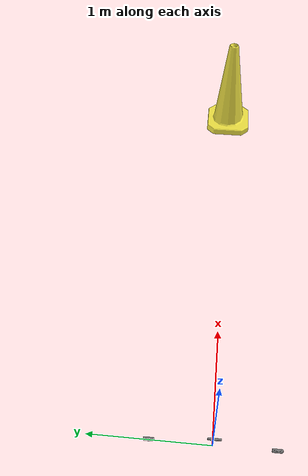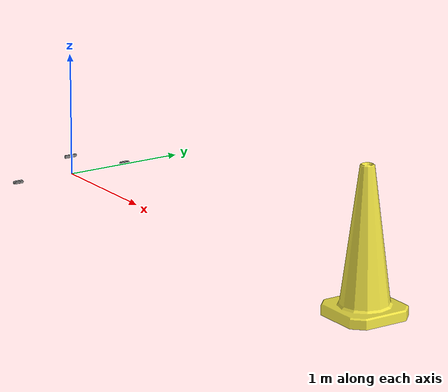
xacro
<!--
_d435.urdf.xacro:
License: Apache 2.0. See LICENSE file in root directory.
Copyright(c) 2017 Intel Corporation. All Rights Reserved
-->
<?xml version="1.0"?>

<robot name="realsense_cameras" xmlns:xacro="http://ros.org/wiki/xacro">
  <link name="base_link"/>

  <!-- d435  frame definition can be found at https://github.com/IntelRealSense/librealsense/blob/master/doc/d435i.md -->
  <xacro:include filename="$(find realsense_gazebo_description)/urdf/_d435.urdf.xacro"/>
  <xacro:sensor_d435  parent="base_link" name="D435_camera" topics_ns="D435_camera"
                      enable_pointCloud="false"
                      clip_distance="-1.0"
                      align_depth="false"
                      visualize="false"

                      depth_width="1280"
                      depth_height="720"
                      depth_fps="30"

                      infra_width="640"
                      infra_height="480"
                      infra_fps="30"

                      color_width="1920"
                      color_height="1080"
                      color_fps="30"
                      >
    <origin xyz="0.0 -0.5 0.0" rpy="0.0 0.0 0.0"/>
  </xacro:sensor_d435>

  <!-- d435i frame definition can be found at https://github.com/IntelRealSense/librealsense/blob/master/doc/d435i.md -->
  <!-- unite_imu_method can be "false", "copy" or "linear_interpolation" -->
  <xacro:include filename="$(find realsense_gazebo_description)/urdf/_d435i.urdf.xacro"/>
  <xacro:sensor_d435i parent="base_link" name="D435i_camera" topics_ns="D435i_camera"
                      enable_pointCloud="true"
                      clip_distance="-1.0"
                      align_depth="false"
                      visualize="false"

                      unite_imu_method="false"
                      accel_fps="250"
                      gyro_fps="400"

                      depth_width="1280"
                      depth_height="720"
                      depth_fps="30"

                      infra_width="640"
                      infra_height="480"
                      infra_fps="30"

                      color_width="1920"
                      color_height="1080"
                      color_fps="30"
                      >
    <origin xyz="0.0 0.5 0.0" rpy="0.0 0.0 0.0"/>
  </xacro:sensor_d435i>

  <!-- t265  frame definition can be found at https://github.com/IntelRealSense/librealsense/blob/master/doc/t265.md -->
  <!-- odom_xyz and odom_rpy paramenters are used as a base for odometry, they represent the trasformation from the robot
       base_link. unite_imu_method can be "false", "copy" or "linear_interpolation" -->
  <xacro:include filename="$(find realsense_gazebo_description)/urdf/_t265.urdf.xacro"/>
  <xacro:sensor_t265  parent="base_link" name="T265_camera" topics_ns="T265_camera"
                      odom_xyz="0.0 0.0 0.25"
                      odom_rpy="0.0 0.0 0.0"
                      odom_fps="262"

                      fisheye_width="848"
                      fisheye_height="800"
                      fisheye_fps="30"

                      unite_imu_method="false"
                      accel_fps="62.5"
                      gyro_fps="200"
                      >
    <origin xyz="0.0 0.0 0.15" rpy="0.0 0.0 0.0"/>
  </xacro:sensor_t265>

  <!-- add a cone, just to have something to see -->
  <joint name="cone_joint" type="fixed">
          <parent link="base_link"/>
          <child link="cone_link"/>
          <origin xyz="4 0 0" rpy="0 0 0"/>
  </joint>
  <link name='cone_link'>
    <visual>
      <geometry>
        <mesh filename="model://construction_cone/meshes/construction_cone.dae" scale="10 10 10"/>
      </geometry>
    </visual>
  </link>

</robot>

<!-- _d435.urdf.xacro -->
<robot name="sensor_d435" xmlns:xacro="http://ros.org/wiki/xacro">
  <!--File includes-->
  <xacro:include filename="$(find realsense_gazebo_description)/urdf/_d435.gazebo.xacro"/>

  <xacro:macro name="sensor_d435" params="parent
                                          name:=camera
                                          topics_ns:=camera
                                          align_depth:=false
                                          enable_pointCloud:=false

                                          clip_distance:=-1.0
                                          depth_width:=1280
                                          depth_height:=720
                                          depth_fps:=30

                                          infra_width:=640
                                          infra_height:=480
                                          infra_fps:=30

                                          color_width:=1920
                                          color_height:=1080
                                          color_fps:=30

                                          visualize:=false
                                          *origin">
    <xacro:property name="M_PI" value="3.1415926535897931"/>

    <!-- The following values are approximate, and the camera node
     publishing TF values with actual calibrated camera extrinsic values -->
    <xacro:property name="d435_cam_depth_to_left_ir_offset" value="0.0"/>
    <xacro:property name="d435_cam_depth_to_right_ir_offset" value="-0.050"/>
    <xacro:property name="d435_cam_depth_to_color_offset" value="0.015"/>

    <!-- The following values model the aluminum peripherial case for the
  	D435 camera, with the camera joint represented by the actual
  	peripherial camera tripod mount -->
    <xacro:property name="d435_cam_width" value="0.090"/>
    <xacro:property name="d435_cam_height" value="0.025"/>
    <xacro:property name="d435_cam_depth" value="0.02505"/>
    <xacro:property name="d435_cam_mount_from_center_offset" value="0.0149"/>

    <!-- The following offset is relative the the physical D435 camera peripherial
  	camera tripod mount -->
    <xacro:property name="d435_cam_depth_px" value="${d435_cam_mount_from_center_offset}"/>
    <xacro:property name="d435_cam_depth_py" value="0.0175"/>
    <xacro:property name="d435_cam_depth_pz" value="${d435_cam_height/2}"/>

    <material name="${name}_aluminum">
	  <color rgba="0.5 0.5 0.5 1"/>
    </material>

    <!-- camera body, with origin at bottom screw mount -->
    <joint name="${name}_joint" type="fixed">
      <xacro:insert_block name="origin"/>
      <parent link="${parent}"/>
      <child link="${name}_bottom_screw_frame"/>
    </joint>
    <link name="${name}_bottom_screw_frame"/>

    <joint name="${name}_link_joint" type="fixed">
      <origin xyz="0 ${d435_cam_depth_py} ${d435_cam_depth_pz}" rpy="0 0 0"/>
      <parent link="${name}_bottom_screw_frame"/>
      <child link="${name}_link"/>
    </joint>

    <link name="${name}_link">
      <visual>
      <origin xyz="${d435_cam_mount_from_center_offset} ${-d435_cam_depth_py} 0" rpy="${M_PI/2} 0 ${M_PI/2}"/>
        <geometry>
          <mesh filename="package://realsense2_description/meshes/d435.dae"/>
        </geometry>
        <material name="${name}_aluminum"/>
      </visual>
      <collision>
        <origin xyz="0 ${-d435_cam_depth_py} 0" rpy="0 0 0"/>
        <geometry>
        <box size="${d435_cam_depth} ${d435_cam_width} ${d435_cam_height}"/>
        </geometry>
      </collision>
      <inertial>
        <!-- The following are not reliable values, and should not be used for modeling -->
        <mass value="0.564"/>
        <origin xyz="0 0 0"/>
        <inertia ixx="0.003881243" ixy="0.0" ixz="0.0" iyy="0.000498940" iyz="0.0" izz="0.003879257"/>
      </inertial>
    </link>

    <!-- camera depth joints and links -->
    <joint name="${name}_depth_joint" type="fixed">
      <origin xyz="0 0 0" rpy="0 0 0"/>
      <parent link="${name}_link"/>
      <child link="${name}_depth_frame"/>
    </joint>
    <link name="${name}_depth_frame"/>

    <joint name="${name}_depth_optical_joint" type="fixed">
      <origin xyz="0 0 0" rpy="${-M_PI/2} 0 ${-M_PI/2}"/>
      <parent link="${name}_depth_frame"/>
      <child link="${name}_depth_optical_frame"/>
    </joint>
    <link name="${name}_depth_optical_frame"/>

    <!-- camera left IR joints and links -->
    <joint name="${name}_left_ir_joint" type="fixed">
      <origin xyz="0 ${d435_cam_depth_to_left_ir_offset} 0" rpy="0 0 0"/>
      <parent link="${name}_depth_frame"/>
      <child link="${name}_left_ir_frame"/>
    </joint>
    <link name="${name}_left_ir_frame"/>

    <joint name="${name}_left_ir_optical_joint" type="fixed">
      <origin xyz="0 0 0" rpy="${-M_PI/2} 0 ${-M_PI/2}"/>
      <parent link="${name}_left_ir_frame"/>
      <child link="${name}_left_ir_optical_frame"/>
    </joint>
    <link name="${name}_left_ir_optical_frame"/>

    <!-- camera right IR joints and links -->
    <joint name="${name}_right_ir_joint" type="fixed">
      <origin xyz="0 ${d435_cam_depth_to_right_ir_offset} 0" rpy="0 0 0"/>
      <parent link="${name}_depth_frame"/>
      <child link="${name}_right_ir_frame"/>
    </joint>
    <link name="${name}_right_ir_frame"/>

    <joint name="${name}_right_ir_optical_joint" type="fixed">
      <origin xyz="0 0 0" rpy="${-M_PI/2} 0 ${-M_PI/2}"/>
      <parent link="${name}_right_ir_frame"/>
      <child link="${name}_right_ir_optical_frame"/>
    </joint>
    <link name="${name}_right_ir_optical_frame"/>

    <!-- camera color joints and links -->
    <joint name="${name}_color_joint" type="fixed">
      <origin xyz="0 ${d435_cam_depth_to_color_offset} 0" rpy="0 0 0"/>
      <parent link="${name}_depth_frame"/>
      <child link="${name}_color_frame"/>
    </joint>
    <link name="${name}_color_frame"/>

    <joint name="${name}_color_optical_joint" type="fixed">
      <origin xyz="0 0 0" rpy="${-M_PI/2} 0 ${-M_PI/2}"/>
      <parent link="${name}_color_frame"/>
      <child link="${name}_color_optical_frame"/>
    </joint>
    <link name="${name}_color_optical_frame"/>

    <!-- Realsense Gazebo Plugin -->
    <xacro:gazebo_d435  camera_name="${name}"
                        topics_ns="${topics_ns}"
                        reference_link="${name}_link"

                        depth_optical_frame="${name}_depth_optical_frame"
                        depth_width="${depth_width}"
                        depth_height="${depth_height}"
                        depth_fps="${depth_fps}"

                        color_optical_frame="${name}_color_optical_frame"
                        color_width="${color_width}"
                        color_height="${color_height}"
                        color_fps="${color_fps}"

                        infrared1_optical_frame="${name}_left_ir_optical_frame"
                        infrared2_optical_frame="${name}_right_ir_optical_frame"
                        infra_width="${infra_width}"
                        infra_height="${infra_height}"
                        infra_fps="${infra_fps}"

                        enable_pointCloud="${enable_pointCloud}"
                        clip_distance="${clip_distance}"
                        align_depth="${align_depth}"
                        visualize="${visualize}"
    />

  </xacro:macro>
</robot>

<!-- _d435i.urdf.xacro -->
<robot name="sensor_d435i" xmlns:xacro="http://ros.org/wiki/xacro">
  <!--File includes-->
  <xacro:include filename="$(find realsense_gazebo_description)/urdf/_d435i.gazebo.xacro"/>

  <xacro:macro name="sensor_d435i" params="parent
                                          name:=camera
                                          topics_ns:=camera
                                          visualize:=false
                                          align_depth:=false
                                          enable_pointCloud:=false

                                          unite_imu_method:=false
                                          accel_fps:=250
                                          gyro_fps:=400

                                          clip_distance:=-1.0
                                          depth_width:=1280
                                          depth_height:=720
                                          depth_fps:=30

                                          infra_width:=640
                                          infra_height:=480
                                          infra_fps:=30

                                          color_width:=1920
                                          color_height:=1080
                                          color_fps:=30

                                          *origin">
    <xacro:property name="M_PI" value="3.1415926535897931"/>

    <!-- The following values are approximate, and the camera node
     publishing TF values with actual calibrated camera extrinsic values -->
    <xacro:property name="d435i_cam_depth_to_left_ir_offset" value="0.0"/>
    <xacro:property name="d435i_cam_depth_to_right_ir_offset" value="-0.050"/>
    <xacro:property name="d435i_cam_depth_to_color_offset" value="0.015"/>

    <!-- The following values model the aluminum peripherial case for the
  	D435 camera, with the camera joint represented by the actual
  	peripherial camera tripod mount -->
    <xacro:property name="d435i_cam_width" value="0.090"/>
    <xacro:property name="d435i_cam_height" value="0.025"/>
    <xacro:property name="d435i_cam_depth" value="0.02505"/>
    <xacro:property name="d435i_cam_mount_from_center_offset" value="0.0149"/>

    <!-- The following offset is relative the the physical D435 camera peripherial
  	camera tripod mount -->
    <xacro:property name="d435i_cam_depth_px" value="${d435i_cam_mount_from_center_offset}"/>
    <xacro:property name="d435i_cam_depth_py" value="0.0175"/>
    <xacro:property name="d435i_cam_depth_pz" value="${d435i_cam_height/2}"/>

    <material name="${name}_aluminum">
	  <color rgba="0.5 0.5 0.5 1"/>
    </material>

    <!-- camera body, with origin at bottom screw mount -->
    <joint name="${name}_joint" type="fixed">
      <xacro:insert_block name="origin"/>
      <parent link="${parent}"/>
      <child link="${name}_bottom_screw_frame"/>
    </joint>
    <link name="${name}_bottom_screw_frame"/>

    <joint name="${name}_link_joint" type="fixed">
      <origin xyz="0 ${d435i_cam_depth_py} ${d435i_cam_depth_pz}" rpy="0 0 0"/>
      <parent link="${name}_bottom_screw_frame"/>
      <child link="${name}_link"/>
    </joint>

    <link name="${name}_link">
      <visual>
      <origin xyz="${d435i_cam_mount_from_center_offset} ${-d435i_cam_depth_py} 0" rpy="${M_PI/2} 0 ${M_PI/2}"/>
        <geometry>
          <mesh filename="package://realsense2_description/meshes/d435.dae"/>
        </geometry>
        <material name="${name}_aluminum"/>
      </visual>
      <collision>
        <origin xyz="0 ${-d435i_cam_depth_py} 0" rpy="0 0 0"/>
        <geometry>
        <box size="${d435i_cam_depth} ${d435i_cam_width} ${d435i_cam_height}"/>
        </geometry>
      </collision>
      <inertial>
        <!-- The following are not reliable values, and should not be used for modeling -->
        <mass value="0.564"/>
        <origin xyz="0 0 0"/>
        <inertia ixx="0.003881243" ixy="0.0" ixz="0.0" iyy="0.000498940" iyz="0.0" izz="0.003879257"/>
      </inertial>
    </link>

    <!-- camera depth joints and links -->
    <joint name="${name}_depth_joint" type="fixed">
      <origin xyz="0 0 0" rpy="0 0 0"/>
      <parent link="${name}_link"/>
      <child link="${name}_depth_frame"/>
    </joint>
    <link name="${name}_depth_frame"/>

    <joint name="${name}_depth_optical_joint" type="fixed">
      <origin xyz="0 0 0" rpy="${-M_PI/2} 0 ${-M_PI/2}"/>
      <parent link="${name}_depth_frame"/>
      <child link="${name}_depth_optical_frame"/>
    </joint>
    <link name="${name}_depth_optical_frame"/>

    <!-- camera left IR joints and links -->
    <joint name="${name}_left_ir_joint" type="fixed">
      <origin xyz="0 ${d435i_cam_depth_to_left_ir_offset} 0" rpy="0 0 0"/>
      <parent link="${name}_depth_frame"/>
      <child link="${name}_left_ir_frame"/>
    </joint>
    <link name="${name}_left_ir_frame"/>

    <joint name="${name}_left_ir_optical_joint" type="fixed">
      <origin xyz="0 0 0" rpy="${-M_PI/2} 0 ${-M_PI/2}"/>
      <parent link="${name}_left_ir_frame"/>
      <child link="${name}_left_ir_optical_frame"/>
    </joint>
    <link name="${name}_left_ir_optical_frame"/>

    <!-- camera right IR joints and links -->
    <joint name="${name}_right_ir_joint" type="fixed">
      <origin xyz="0 ${d435i_cam_depth_to_right_ir_offset} 0" rpy="0 0 0"/>
      <parent link="${name}_depth_frame"/>
      <child link="${name}_right_ir_frame"/>
    </joint>
    <link name="${name}_right_ir_frame"/>

    <joint name="${name}_right_ir_optical_joint" type="fixed">
      <origin xyz="0 0 0" rpy="${-M_PI/2} 0 ${-M_PI/2}"/>
      <parent link="${name}_right_ir_frame"/>
      <child link="${name}_right_ir_optical_frame"/>
    </joint>
    <link name="${name}_right_ir_optical_frame"/>

    <!-- camera color joints and links -->
    <joint name="${name}_color_joint" type="fixed">
      <origin xyz="0 ${d435i_cam_depth_to_color_offset} 0" rpy="0 0 0"/>
      <parent link="${name}_depth_frame"/>
      <child link="${name}_color_frame"/>
    </joint>
    <link name="${name}_color_frame"/>

    <joint name="${name}_color_optical_joint" type="fixed">
      <origin xyz="0 0 0" rpy="${-M_PI/2} 0 ${-M_PI/2}"/>
      <parent link="${name}_color_frame"/>
      <child link="${name}_color_optical_frame"/>
    </joint>
    <link name="${name}_color_optical_frame"/>

    <!-- camera accel joints and links -->
    <joint name="${name}_accel_joint" type="fixed">
      <origin xyz="-0.00174 0.00552 0.0176" rpy="0 0 0"/>
      <parent link="${name}_link"/>
      <child link="${name}_accel_frame"/>
    </joint>
    <link name="${name}_accel_frame"/>

    <joint name="${name}_accel_optical_joint" type="fixed">
      <origin xyz="0 0 0" rpy="${-M_PI/2} 0 ${-M_PI/2}"/>
      <parent link="${name}_accel_frame"/>
      <child link="${name}_accel_optical_frame"/>
    </joint>
    <link name="${name}_accel_optical_frame"/>

    <!-- camera gyro joints and links -->
    <joint name="${name}_gyro_joint" type="fixed">
      <origin xyz="-0.00174 0.00552 0.0176" rpy="0 0 0"/>
      <parent link="${name}_link"/>
      <child link="${name}_gyro_frame"/>
    </joint>
    <link name="${name}_gyro_frame"/>

    <joint name="${name}_gyro_optical_joint" type="fixed">
      <origin xyz="0 0 0" rpy="${-M_PI/2} 0 ${-M_PI/2}"/>
      <parent link="${name}_gyro_frame"/>
      <child link="${name}_gyro_optical_frame"/>
    </joint>
    <link name="${name}_gyro_optical_frame"/>

    <!-- Realsense Gazebo Plugin -->
    <xacro:gazebo_d435i camera_name="${name}"
                        topics_ns="${topics_ns}"
                        reference_link="${name}_link"

                        depth_optical_frame="${name}_depth_optical_frame"
                        depth_width="${depth_width}"
                        depth_height="${depth_height}"
                        depth_fps="${depth_fps}"

                        color_optical_frame="${name}_color_optical_frame"
                        color_width="${color_width}"
                        color_height="${color_height}"
                        color_fps="${color_fps}"

                        infrared1_optical_frame="${name}_left_ir_optical_frame"
                        infrared2_optical_frame="${name}_right_ir_optical_frame"
                        infra_width="${infra_width}"
                        infra_height="${infra_height}"
                        infra_fps="${infra_fps}"

                        accel_optical_frame="${name}_accel_optical_frame"
                        gyro_optical_frame="${name}_gyro_optical_frame"
                        accel_fps="${accel_fps}"
                        gyro_fps="${gyro_fps}"

                        enable_pointCloud="${enable_pointCloud}"
                        unite_imu_method="${unite_imu_method}"
                        clip_distance="${clip_distance}"
                        align_depth="${align_depth}"
                        visualize="${visualize}"
    />

  </xacro:macro>
</robot>

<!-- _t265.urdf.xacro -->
<robot name="sensor_t265" xmlns:xacro="http://ros.org/wiki/xacro">
  <!--File includes-->
  <xacro:include filename="$(find realsense_gazebo_description)/urdf/_t265.gazebo.xacro"/>

    <!-- odom_xyz, odom_rpy params are the transformation from the robot base_link to the camera reference frame (camerea_pose_frame)
  they are needed for the simulation of the camera slam capabilities -->
  <xacro:macro name="sensor_t265" params="parent
                                          name:=camera
                                          topics_ns:=camera

                                          unite_imu_method:=false
                                          accel_fps:=62.5
                                          gyro_fps:=200

                                          fisheye_width:=848
                                          fisheye_height:=800
                                          fisheye_fps:=30

                                          odom_xyz
                                          odom_rpy
                                          odom_fps:=262

                                          *origin">
    <xacro:property name="M_PI" value="3.1415926535897931"/>

    <!-- The following values are approximate, and the camera node
     publishing TF values with actual calibrated camera extrinsic values -->
    <xacro:property name="fisheye1_offset_x" value="-0.0411"/>
    <xacro:property name="fisheye1_offset_y" value="0.0"/>
    <xacro:property name="fisheye1_offset_z" value="0.0"/>

    <xacro:property name="fisheye2_offset_x" value="0.0229"/>
    <xacro:property name="fisheye2_offset_y" value="0.0"/>
    <xacro:property name="fisheye2_offset_z" value="0.0"/>

    <material name="${name}_aluminum">
      <color rgba="0.5 0.5 0.5 1"/>
    </material>

    <!-- camera body, with origin at camera_pose_frame -->
    <joint name="${name}_pose_joint" type="fixed">
      <xacro:insert_block name="origin"/>
      <parent link="${parent}"/>
      <child link="${name}_pose_frame"/>
    </joint>

    <link name="${name}_pose_frame">
      <visual>
      <origin xyz="0 0 0" rpy="${M_PI / 2} 0 ${M_PI /2}"/>
        <geometry>
            <mesh filename="package://realsense_gazebo_description/meshes/t265_full.stl" scale="0.001 0.001 0.001"/>
        </geometry>
        <material name="${name}_aluminum"/>
      </visual>
      <collision>
        <origin xyz="0 0 0" rpy="${M_PI / 2} 0 ${M_PI /2}"/>
        <geometry>
          <mesh filename="package://realsense_gazebo_description/meshes/t265_simplified.stl"  scale="0.001 0.001 0.001"/>
        </geometry>
      </collision>
      <inertial>
        <!-- The following are not reliable values, and should not be used for modeling -->
        <mass value="0.068024"/>
        <origin xyz="0 0 0"/>
        <inertia ixx="0.0000039782" ixy="0.0" ixz="0.000000034641" iyy="0.000065045" iyz="0.0" izz="0.000067499"/>
      </inertial>
    </link>

    <!-- camera body, with origin at camera_link -->
    <joint name="${name}_link_joint" type="fixed">
      <origin xyz="0 0 0" rpy="${M_PI / 2} 0 -${M_PI / 2}"/>
      <parent link="${name}_pose_frame"/>
      <child link="${name}_link"/>
    </joint>
    <link name="${name}_link"/>

    <joint name="${name}_fisheye1_rgb_joint" type="fixed">
      <origin xyz="${fisheye1_offset_x} ${fisheye1_offset_y} ${fisheye1_offset_z}" rpy="0 ${M_PI/2} ${M_PI/2}"/>
      <parent link="${name}_link"/>
      <child link="${name}_fisheye1_rgb_frame"/>
    </joint>
    <link name="${name}_fisheye1_rgb_frame"/>

    <joint name="${name}_fisheye2_rgb_joint" type="fixed">
      <origin xyz="${fisheye2_offset_x} ${fisheye2_offset_y} ${fisheye2_offset_z}" rpy="0 ${M_PI/2} ${M_PI/2}"/>
      <parent link="${name}_link"/>
      <child link="${name}_fisheye2_rgb_frame"/>
    </joint>
    <link name="${name}_fisheye2_rgb_frame"/>

    <joint name="${name}_fisheye1_optical_joint" type="fixed">
      <origin xyz="0 0 0" rpy="-${M_PI/2} 0 -${M_PI/2}"/>
      <parent link="${name}_fisheye1_rgb_frame"/>
      <child link="${name}_fisheye1_optical_frame"/>
    </joint>
    <link name="${name}_fisheye1_optical_frame"/>

    <joint name="${name}_fisheye2_optical_joint" type="fixed">
      <origin xyz="0 0 0" rpy="-${M_PI/2} 0 -${M_PI/2}"/>
      <parent link="${name}_fisheye2_rgb_frame"/>
      <child link="${name}_fisheye2_optical_frame"/>
    </joint>
    <link name="${name}_fisheye2_optical_frame"/>

    <!-- IMU joints and links -->
    <joint name="${name}_accel_joint" type="fixed">
      <origin xyz="-0.0311 0 0.00655" rpy="0 ${M_PI} 0"/>
      <parent link="${name}_link"/>
      <child link="${name}_accel_frame"/>
    </joint>
    <link name="${name}_accel_frame"/>
    <joint name="${name}_accel_optical_joint" type="fixed">
      <origin xyz="-0.0311 0 0.00655" rpy="0 ${M_PI} 0"/>
      <parent link="${name}_accel_frame"/>
      <child link="${name}_accel_optical_frame"/>
    </joint>
    <link name="${name}_accel_optical_frame"/>

    <joint name="${name}_gyro_joint" type="fixed">
      <origin xyz="-0.0311 0 0.00655" rpy="0 ${M_PI} 0"/>
      <parent link="${name}_link"/>
      <child link="${name}_gyro_frame"/>
    </joint>
    <link name="${name}_gyro_frame"/>

    <joint name="${name}_gyro_optical_joint" type="fixed">
      <origin xyz="0 0 0" rpy="0 0 0"/>
      <parent link="${name}_gyro_frame"/>
      <child link="${name}_gyro_optical_frame"/>
    </joint>
    <link name="${name}_gyro_optical_frame"/>

    <!-- Realsense Gazebo Plugin -->
    <xacro:gazebo_t265  camera_name="${name}" topics_ns="${topics_ns}"
                        fisheye1_reference_link="${name}_fisheye1_rgb_frame"
                        fisheye2_reference_link="${name}_fisheye2_rgb_frame"
                        fisheye1_optical_frame="${name}_fisheye1_optical_frame"
                        fisheye2_optical_frame="${name}_fisheye2_optical_frame"
                        fisheye_width="${fisheye_width}"
                        fisheye_height="${fisheye_height}"
                        fisheye_fps="${fisheye_fps}"

                        accel_optical_frame="${name}_accel_optical_frame"
                        gyro_optical_frame="${name}_gyro_optical_frame"
                        unite_imu_method="${unite_imu_method}"
                        accel_fps="${accel_fps}"
                        gyro_fps="${gyro_fps}"

                        pose_frame="${name}_pose_frame"
                        odom_xyz="${odom_xyz}"
                        odom_rpy="${odom_rpy}"
                        odom_fps="${odom_fps}"
    />
  </xacro:macro>

</robot>
